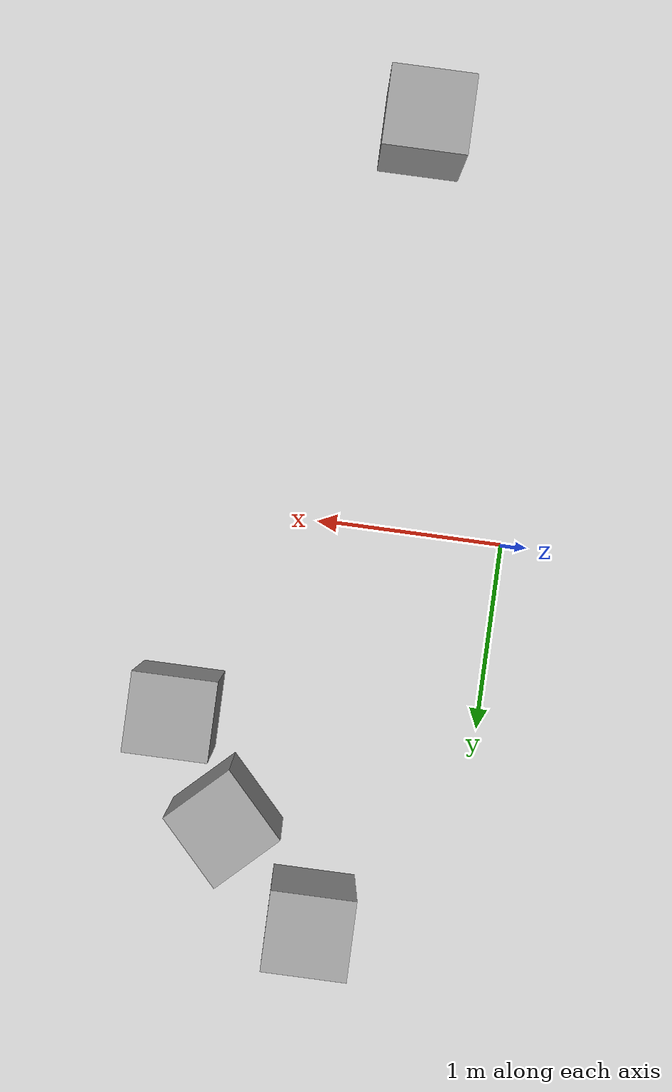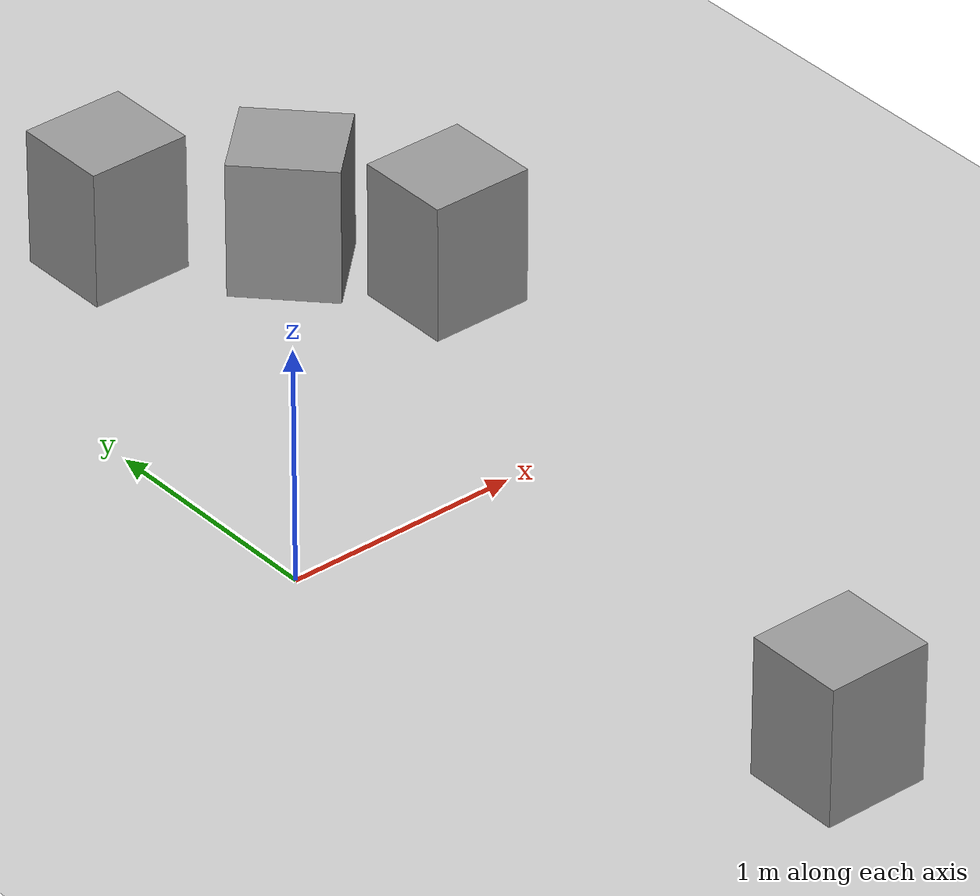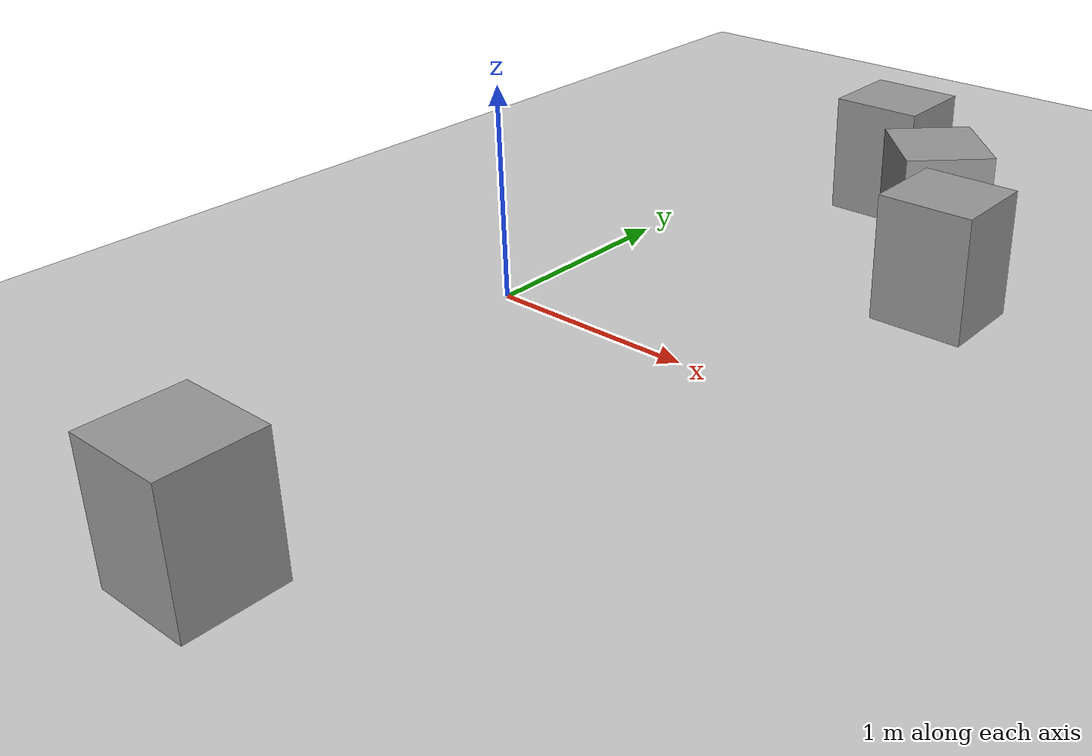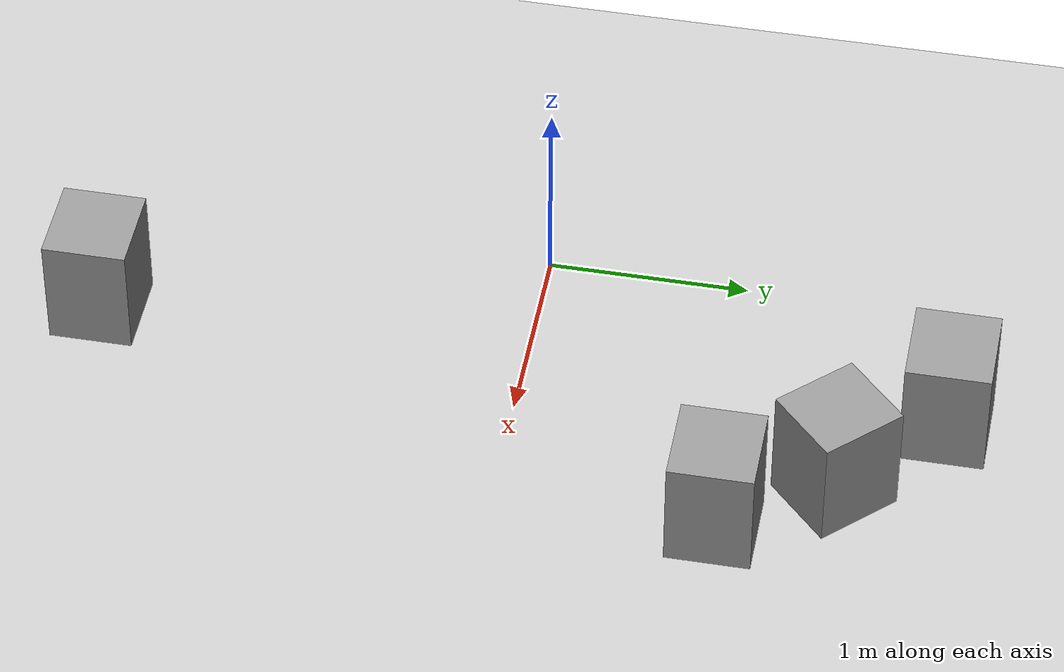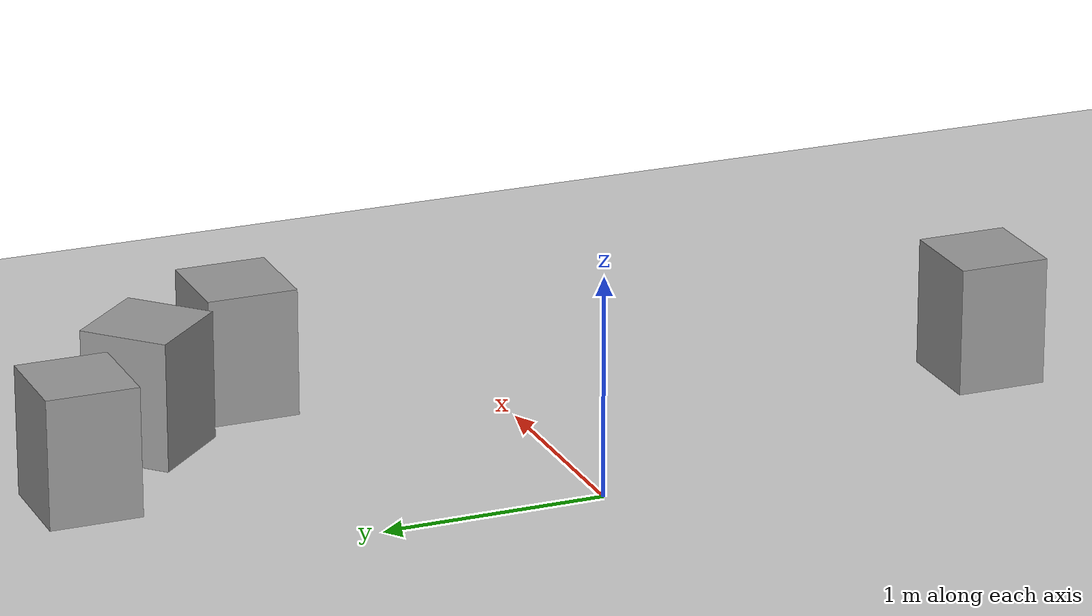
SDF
<sdf version="1.7">
 <world name="default">
  <light name="sun" type="directional">
   <pose>0 0 10 0 -0 0</pose>
   <diffuse>0.8 0.8 0.8 1</diffuse>
   <specular>0.2 0.2 0.2 1</specular>
   <attenuation>
    <range>1000</range>
    <constant>0.9</constant>
    <linear>0.01</linear>
    <quadratic>0.001</quadratic>
   </attenuation>
   <direction>-0.5 0.1 -0.9</direction>
   <spot><inner_angle>0</inner_angle><outer_angle>0</outer_angle><falloff>0</falloff></spot>
  </light>
  <model name="ground_plane">
   <static>1</static>
   <link name="link">
    <collision name="collision">
     <geometry><plane><normal>0 0 1</normal><size>100 100</size></plane></geometry>
     <surface><friction><ode><mu>100</mu><mu2>50</mu2></ode></friction></surface>
    </collision>
    <visual name="visual">
     <cast_shadows>0</cast_shadows>
     <geometry><plane><normal>0 0 1</normal><size>100 100</size></plane></geometry>
     <material>
      <script><uri>file://media/materials/scripts/gazebo.material</uri><name>Gazebo/Grey</name></script>
     </material>
    </visual>
   </link>
  </model>
  <physics type="ode">
   <real_time_update_rate>1000</real_time_update_rate>
   <max_step_size>0.001</max_step_size>
   <real_time_factor>1</real_time_factor>
   <ode>
    <solver>
     <type>quick</type>
     <iters>150</iters>
     <precon_iters>0</precon_iters>
     <sor>1.4</sor>
     <use_dynamic_moi_rescaling>1</use_dynamic_moi_rescaling>
    </solver>
    <constraints>
     <cfm>1e-05</cfm>
     <erp>0.2</erp>
     <contact_max_correcting_vel>2000</contact_max_correcting_vel>
     <contact_surface_layer>0.01</contact_surface_layer>
    </constraints>
   </ode>
  </physics>
  <scene><ambient>0.4 0.4 0.4 1</ambient><background>0.7 0.7 0.7 1</background><shadows>1</shadows></scene>
  <gravity>0 0 -9.8</gravity>
  <magnetic_field>6e-06 2.3e-05 -4.2e-05</magnetic_field>
  <atmosphere type="adiabatic"/>
  <audio><device>default</device></audio>
  <spherical_coordinates>
   <surface_model>EARTH_WGS84</surface_model>
   <latitude_deg>0</latitude_deg>
   <longitude_deg>0</longitude_deg>
   <elevation>0</elevation>
   <heading_deg>0</heading_deg>
  </spherical_coordinates>
  <model name="unit_box">
   <link name="link_clone">
    <inertial>
     <mass>0.107807</mass>
     <inertia>
      <ixx>0.0046769</ixx>
      <ixy>0</ixy>
      <ixz>0</ixz>
      <iyy>0.00488062</iyy>
      <iyz>0</iyz>
      <izz>0.00328494</izz>
     </inertia>
    </inertial>
    <pose>-0.454077 -3.28142 -0.211488 -0 -0 -0</pose>
    <visual name="visual">
     <geometry><box><size>0.440638 0.414108 0.590847</size></box></geometry>
     <material>
      <script><name>Gazebo/Grey</name><uri>file://media/materials/scripts/gazebo.material</uri></script>
      <shader type="pixel"/>
     </material>
    </visual>
    <collision name="collision">
     <geometry><box><size>0.440638 0.414108 0.590847</size></box></geometry>
     <surface>
      <friction>
       <ode><mu>1</mu><mu2>1</mu2><fdir1>0 0 0</fdir1><slip1>0</slip1><slip2>0</slip2></ode>
       <torsional>
        <coefficient>1</coefficient>
        <patch_radius>0</patch_radius>
        <surface_radius>0</surface_radius>
        <use_patch_radius>1</use_patch_radius>
        <ode><slip>0</slip></ode>
       </torsional>
      </friction>
      <bounce><restitution_coefficient>0</restitution_coefficient><threshold>1e+06</threshold></bounce>
      <contact>
       <collide_without_contact>0</collide_without_contact>
       <collide_without_contact_bitmask>1</collide_without_contact_bitmask>
       <collide_bitmask>1</collide_bitmask>
       <ode>
        <soft_cfm>0</soft_cfm>
        <soft_erp>0.2</soft_erp>
        <kp>1e+13</kp>
        <kd>1</kd>
        <max_vel>0.01</max_vel>
        <min_depth>0</min_depth>
       </ode>
       <bullet>
        <split_impulse>1</split_impulse>
        <split_impulse_penetration_threshold>-0.01</split_impulse_penetration_threshold>
        <soft_cfm>0</soft_cfm>
        <soft_erp>0.2</soft_erp>
        <kp>1e+13</kp>
        <kd>1</kd>
       </bullet>
      </contact>
     </surface>
    </collision>
   </link>
   <link name="link_clone_0">
    <inertial>
     <mass>0.107807</mass>
     <inertia>
      <ixx>0.0046769</ixx>
      <ixy>0</ixy>
      <ixz>0</ixz>
      <iyy>0.00488062</iyy>
      <iyz>0</iyz>
      <izz>0.00328494</izz>
     </inertia>
    </inertial>
    <pose>0.052141 -3.75947 -0.211488 -0 -0 -0.810428</pose>
    <visual name="visual">
     <geometry><box><size>0.440638 0.414108 0.590847</size></box></geometry>
     <material>
      <script><name>Gazebo/Grey</name><uri>file://media/materials/scripts/gazebo.material</uri></script>
      <shader type="pixel"/>
     </material>
    </visual>
    <collision name="collision">
     <geometry><box><size>0.440638 0.414108 0.590847</size></box></geometry>
     <surface>
      <friction>
       <ode><mu>1</mu><mu2>1</mu2><fdir1>0 0 0</fdir1><slip1>0</slip1><slip2>0</slip2></ode>
       <torsional>
        <coefficient>1</coefficient>
        <patch_radius>0</patch_radius>
        <surface_radius>0</surface_radius>
        <use_patch_radius>1</use_patch_radius>
        <ode><slip>0</slip></ode>
       </torsional>
      </friction>
      <bounce><restitution_coefficient>0</restitution_coefficient><threshold>1e+06</threshold></bounce>
      <contact>
       <collide_without_contact>0</collide_without_contact>
       <collide_without_contact_bitmask>1</collide_without_contact_bitmask>
       <collide_bitmask>1</collide_bitmask>
       <ode>
        <soft_cfm>0</soft_cfm>
        <soft_erp>0.2</soft_erp>
        <kp>1e+13</kp>
        <kd>1</kd>
        <max_vel>0.01</max_vel>
        <min_depth>0</min_depth>
       </ode>
       <bullet>
        <split_impulse>1</split_impulse>
        <split_impulse_penetration_threshold>-0.01</split_impulse_penetration_threshold>
        <soft_cfm>0</soft_cfm>
        <soft_erp>0.2</soft_erp>
        <kp>1e+13</kp>
        <kd>1</kd>
       </bullet>
      </contact>
     </surface>
    </collision>
   </link>
   <link name="link_clone_1">
    <inertial>
     <mass>0.107807</mass>
     <inertia>
      <ixx>0.0046769</ixx>
      <ixy>0</ixy>
      <ixz>0</ixz>
      <iyy>0.00488062</iyy>
      <iyz>0</iyz>
      <izz>0.00328494</izz>
     </inertia>
    </inertial>
    <pose>0.386982 -4.28578 -0.211488 -0 -0 -0</pose>
    <visual name="visual">
     <geometry><box><size>0.440638 0.414108 0.590847</size></box></geometry>
     <material>
      <script><name>Gazebo/Grey</name><uri>file://media/materials/scripts/gazebo.material</uri></script>
      <shader type="pixel"/>
     </material>
    </visual>
    <collision name="collision">
     <geometry><box><size>0.440638 0.414108 0.590847</size></box></geometry>
     <surface>
      <friction>
       <ode><mu>1</mu><mu2>1</mu2><fdir1>0 0 0</fdir1><slip1>0</slip1><slip2>0</slip2></ode>
       <torsional>
        <coefficient>1</coefficient>
        <patch_radius>0</patch_radius>
        <surface_radius>0</surface_radius>
        <use_patch_radius>1</use_patch_radius>
        <ode><slip>0</slip></ode>
       </torsional>
      </friction>
      <bounce><restitution_coefficient>0</restitution_coefficient><threshold>1e+06</threshold></bounce>
      <contact>
       <collide_without_contact>0</collide_without_contact>
       <collide_without_contact_bitmask>1</collide_without_contact_bitmask>
       <collide_bitmask>1</collide_bitmask>
       <ode>
        <soft_cfm>0</soft_cfm>
        <soft_erp>0.2</soft_erp>
        <kp>1e+13</kp>
        <kd>1</kd>
        <max_vel>0.01</max_vel>
        <min_depth>0</min_depth>
       </ode>
       <bullet>
        <split_impulse>1</split_impulse>
        <split_impulse_penetration_threshold>-0.01</split_impulse_penetration_threshold>
        <soft_cfm>0</soft_cfm>
        <soft_erp>0.2</soft_erp>
        <kp>1e+13</kp>
        <kd>1</kd>
       </bullet>
      </contact>
     </surface>
    </collision>
   </link>
   <link name="link_clone_2">
    <inertial>
     <mass>0.107807</mass>
     <inertia>
      <ixx>0.0046769</ixx>
      <ixy>0</ixy>
      <ixz>0</ixz>
      <iyy>0.00488062</iyy>
      <iyz>0</iyz>
      <izz>0.00328494</izz>
     </inertia>
    </inertial>
    <pose>-0.510175 -7.49959 -0.211488 -0 -0 -0</pose>
    <visual name="visual">
     <geometry><box><size>0.440638 0.414108 0.590847</size></box></geometry>
     <material>
      <script><name>Gazebo/Grey</name><uri>file://media/materials/scripts/gazebo.material</uri></script>
      <shader type="pixel"/>
     </material>
    </visual>
    <collision name="collision">
     <geometry><box><size>0.440638 0.414108 0.590847</size></box></geometry>
     <surface>
      <friction>
       <ode><mu>1</mu><mu2>1</mu2><fdir1>0 0 0</fdir1><slip1>0</slip1><slip2>0</slip2></ode>
       <torsional>
        <coefficient>1</coefficient>
        <patch_radius>0</patch_radius>
        <surface_radius>0</surface_radius>
        <use_patch_radius>1</use_patch_radius>
        <ode><slip>0</slip></ode>
       </torsional>
      </friction>
      <bounce><restitution_coefficient>0</restitution_coefficient><threshold>1e+06</threshold></bounce>
      <contact>
       <collide_without_contact>0</collide_without_contact>
       <collide_without_contact_bitmask>1</collide_without_contact_bitmask>
       <collide_bitmask>1</collide_bitmask>
       <ode>
        <soft_cfm>0</soft_cfm>
        <soft_erp>0.2</soft_erp>
        <kp>1e+13</kp>
        <kd>1</kd>
        <max_vel>0.01</max_vel>
        <min_depth>0</min_depth>
       </ode>
       <bullet>
        <split_impulse>1</split_impulse>
        <split_impulse_penetration_threshold>-0.01</split_impulse_penetration_threshold>
        <soft_cfm>0</soft_cfm>
        <soft_erp>0.2</soft_erp>
        <kp>1e+13</kp>
        <kd>1</kd>
       </bullet>
      </contact>
     </surface>
    </collision>
   </link>
   <static>0</static>
   <pose>1.22287 5.36467 0.5 0 -0 0</pose>
  </model>
 </world>
</sdf>
